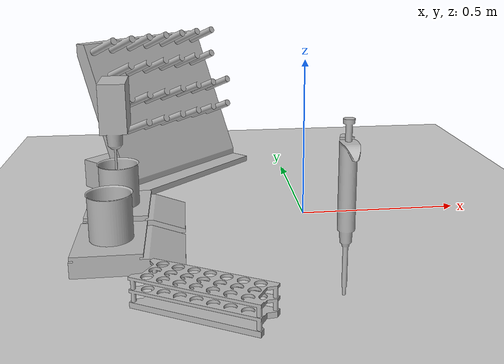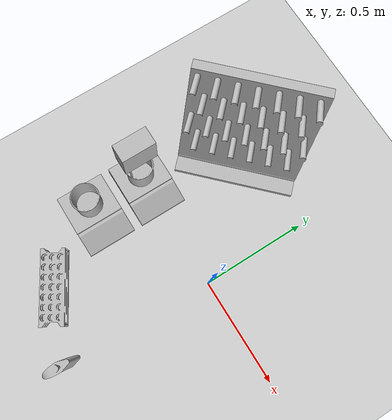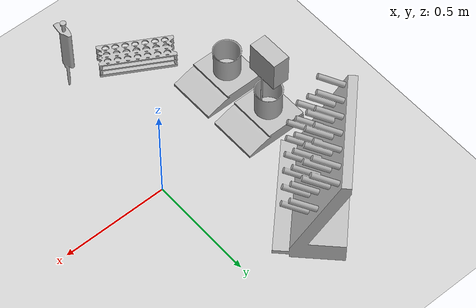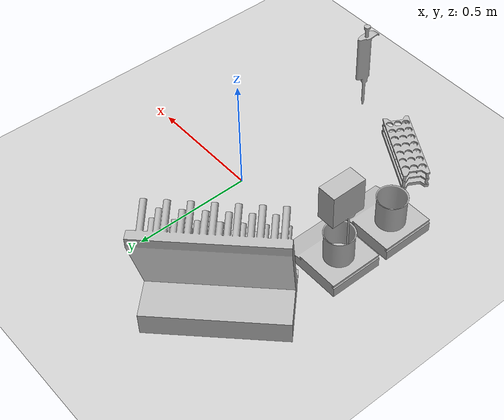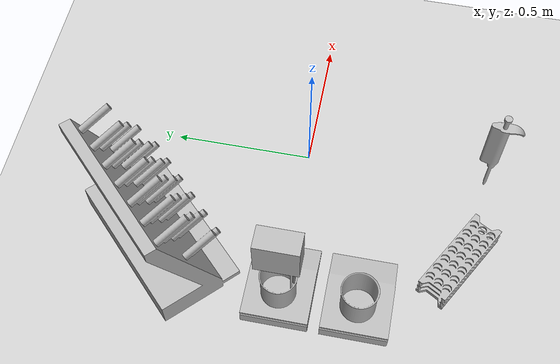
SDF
<sdf version="1.7">
 <world name="solution_preparing">
  <plugin name="gz::sim::systems::Physics" filename="gz-sim-physics-system"/>
  <plugin name="gz::sim::systems::UserCommands" filename="gz-sim-user-commands-system"/>
  <plugin name="gz::sim::systems::SceneBroadcaster" filename="gz-sim-scene-broadcaster-system"/>
  <light name="sun" type="directional">
   <pose>0 0 10 0 -0 0</pose>
   <diffuse>0.8 0.8 0.8 1</diffuse>
   <specular>0.2 0.2 0.2 1</specular>
   <attenuation>
    <range>1000</range>
    <constant>0.9</constant>
    <linear>0.01</linear>
    <quadratic>0.001</quadratic>
   </attenuation>
   <direction>-0.5 0.1 -0.9</direction>
   <spot><inner_angle>0</inner_angle><outer_angle>0</outer_angle><falloff>0</falloff></spot>
  </light>
  <model name="ground_plane">
   <static>1</static>
   <link name="link">
    <collision name="collision">
     <geometry><plane><normal>0 0 1</normal><size>1 1</size></plane></geometry>
    </collision>
    <visual name="visual">
     <geometry><plane><normal>0 0 1</normal><size>100 100</size></plane></geometry>
     <material>
      <ambient>0.8 0.8 0.8 1</ambient>
      <diffuse>0.8 0.8 0.8 1</diffuse>
      <specular>0.8 0.8 0.8 1</specular>
     </material>
    </visual>
   </link>
  </model>
  <model name="scale">
   <pose>-0.53 0 0 0 -0 1.5708</pose>
   <static>1</static>
   <link name="link">
    <collision name="collision">
     <geometry><mesh><uri>file://meshes/scale.stl</uri><scale>1 1 1</scale></mesh></geometry>
    </collision>
    <visual name="visual">
     <geometry><mesh><uri>file://meshes/scale.stl</uri><scale>1 1 1</scale></mesh></geometry>
    </visual>
   </link>
  </model>
  <model name="tube_tripod">
   <pose>-0.34 -0.59 0 0 -0 2.61799</pose>
   <static>1</static>
   <link name="link">
    <collision name="collision">
     <geometry><mesh><uri>file://meshes/tube_tripod.stl</uri><scale>1 1 1</scale></mesh></geometry>
    </collision>
    <visual name="visual">
     <geometry><mesh><uri>file://meshes/tube_tripod.stl</uri><scale>1 1 1</scale></mesh></geometry>
    </visual>
   </link>
  </model>
  <model name="stirrer">
   <pose>-0.58 0 0 0 -0 1.5708</pose>
   <static>1</static>
   <link name="link">
    <collision name="collision">
     <geometry><mesh><uri>file://meshes/stirrer.stl</uri><scale>1 1 1</scale></mesh></geometry>
    </collision>
    <visual name="visual">
     <geometry><mesh><uri>file://meshes/stirrer.stl</uri><scale>1 1 1</scale></mesh></geometry>
    </visual>
   </link>
  </model>
  <model name="dryer">
   <pose>-0.52 0.54 0 0 0 -0.785397</pose>
   <static>1</static>
   <link name="link">
    <collision name="collision">
     <geometry><mesh><uri>file://meshes/dryer.stl</uri><scale>1 1 1</scale></mesh></geometry>
    </collision>
    <visual name="visual">
     <geometry><mesh><uri>file://meshes/dryer.stl</uri><scale>1 1 1</scale></mesh></geometry>
    </visual>
   </link>
  </model>
  <model name="dosator">
   <pose>-0.02101 -0.663926 0.053251 0 -0 1.56841</pose>
   <static>1</static>
   <link name="link">
    <collision name="collision">
     <geometry><mesh><uri>file://meshes/dosator.stl</uri><scale>1 1 1</scale></mesh></geometry>
    </collision>
    <visual name="visual">
     <geometry><mesh><uri>file://meshes/dosator.stl</uri><scale>1 1 1</scale></mesh></geometry>
    </visual>
   </link>
  </model>
  <model name="beaker_2l">
   <pose>-0.58 0 0.06 0 -0 0</pose>
   <static>1</static>
   <link name="link">
    <collision name="collision">
     <geometry><mesh><uri>file://meshes/beaker.stl</uri><scale>1 1 1</scale></mesh></geometry>
    </collision>
    <visual name="visual">
     <geometry><mesh><uri>file://meshes/beaker.stl</uri><scale>1 1 1</scale></mesh></geometry>
    </visual>
   </link>
  </model>
  <gravity>0 0 -9.8</gravity>
  <magnetic_field>6e-06 2.3e-05 -4.2e-05</magnetic_field>
  <atmosphere type="adiabatic"/>
  <physics type="ode">
   <max_step_size>0.001</max_step_size>
   <real_time_factor>1</real_time_factor>
   <real_time_update_rate>1000</real_time_update_rate>
  </physics>
  <scene><ambient>0.4 0.4 0.4 1</ambient><background>0.7 0.7 0.7 1</background><shadows>1</shadows></scene>
  <audio><device>default</device></audio>
  <spherical_coordinates>
   <surface_model>EARTH_WGS84</surface_model>
   <latitude_deg>0</latitude_deg>
   <longitude_deg>0</longitude_deg>
   <elevation>0</elevation>
   <heading_deg>0</heading_deg>
  </spherical_coordinates>
  <model name="scale_clone">
   <pose>-0.53 -0.27 0 0 -0 1.5708</pose>
   <static>1</static>
   <link name="link">
    <collision name="collision">
     <geometry><mesh><uri>file://meshes/scale.stl</uri><scale>1 1 1</scale></mesh></geometry>
    </collision>
    <visual name="visual">
     <geometry><mesh><uri>file://meshes/scale.stl</uri><scale>1 1 1</scale></mesh></geometry>
    </visual>
   </link>
  </model>
  <model name="beaker_2l_clone">
   <pose>-0.58 -0.27 0.06 0 -0 0</pose>
   <static>1</static>
   <link name="link">
    <collision name="collision">
     <geometry><mesh><uri>file://meshes/beaker.stl</uri><scale>1 1 1</scale></mesh></geometry>
    </collision>
    <visual name="visual">
     <geometry><mesh><uri>file://meshes/beaker.stl</uri><scale>1 1 1</scale></mesh></geometry>
    </visual>
   </link>
  </model>
 </world>
</sdf>
